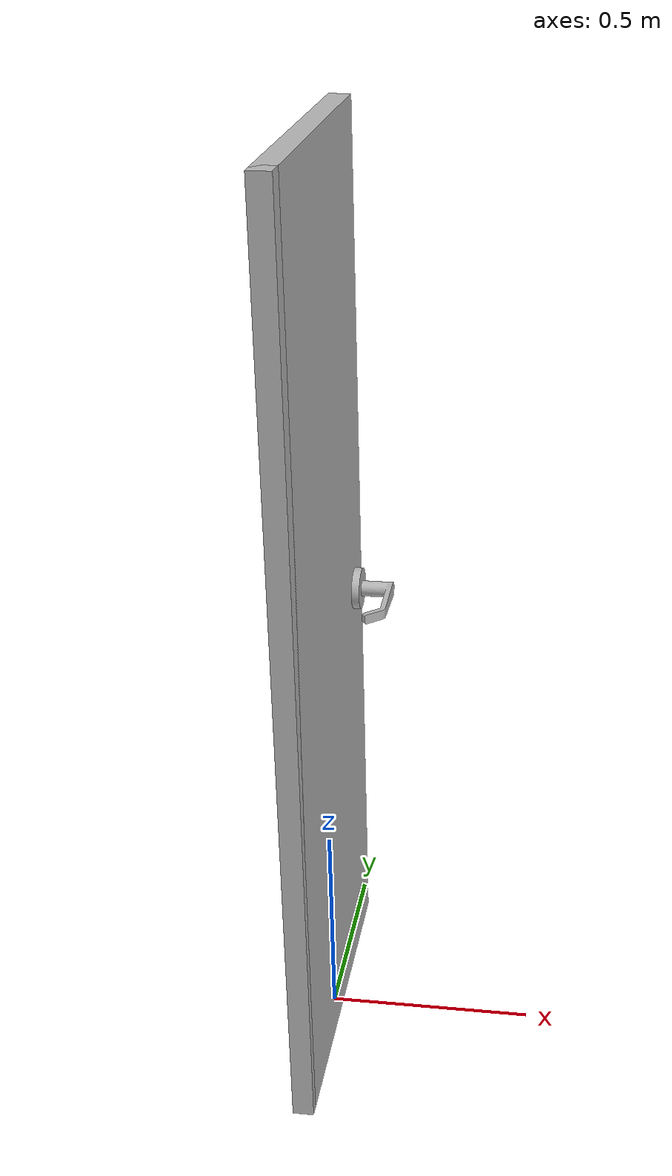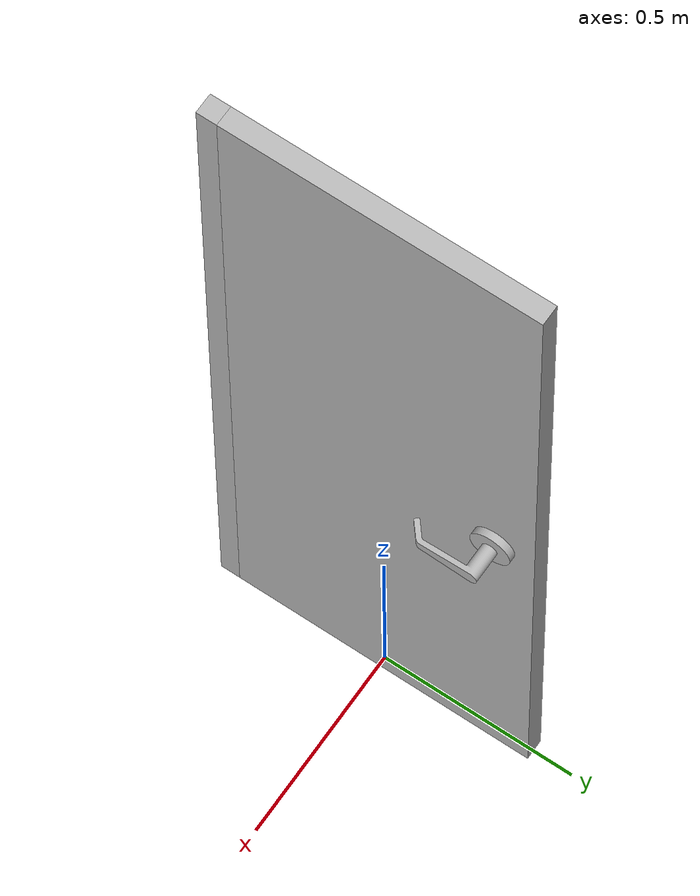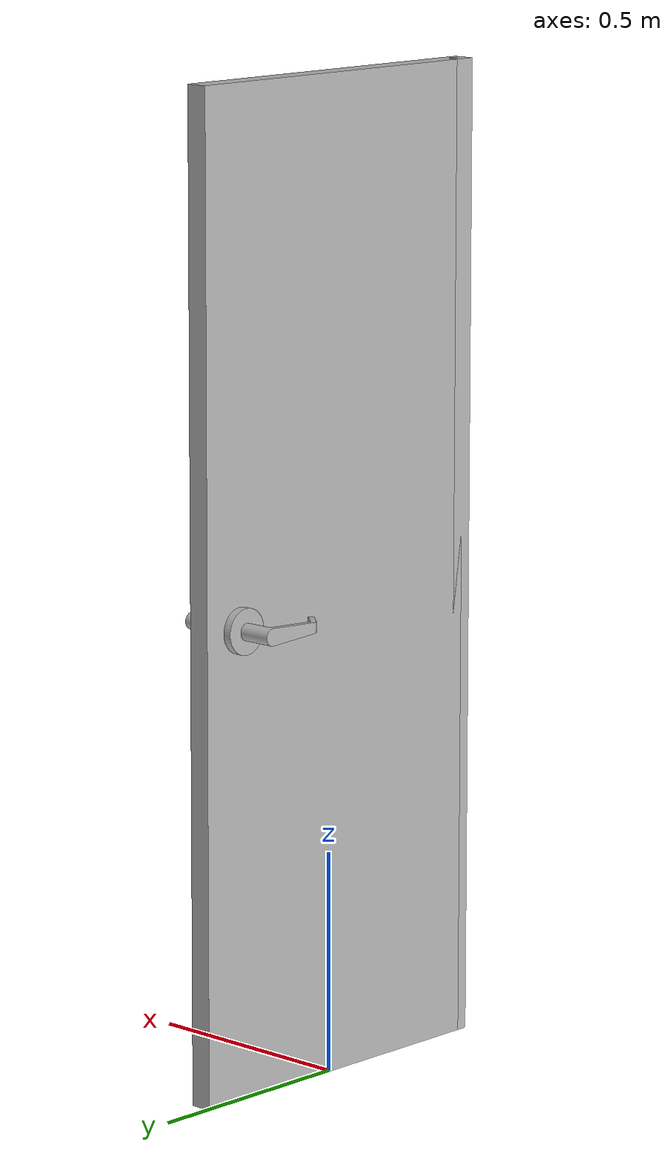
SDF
<?xml version="1.0"?>
<sdf version="1.6">
    <model name="impuls/door_inside">
      <static>false</static>
      <link name="frame">
        <pose>0.0 -0.4 1.11 0 0 0</pose>

        <collision name="collision_1">
          <geometry>
            <box>
              <size>0.05 0.05 2.20</size>
            </box>
          </geometry>
        </collision>

        <visual name="visual">
          <geometry>
            <box>
              <size>0.05 0.05 2.20</size>
            </box>
          </geometry>
        </visual>
      </link>

      <link name="door">
        <pose>0 0.00 1.11 0 0 0</pose>
        <collision name="collision">
          <geometry>
            <box>
              <size>0.05 0.8 2.20</size>
            </box>
          </geometry>
        </collision>
        <visual name="visual">
          <geometry>
            <box>
              <size>0.05 0.8 2.20</size>
            </box>
          </geometry>
        </visual>
     </link>

      <joint name="hinge" type="revolute">
        <parent>frame</parent>
        <child>door</child>
        <axis>
          <xyz>0 0 1</xyz>
          <limit>
            <lower>0</lower>
            <upper>1.58</upper>
          </limit>
          <dynamics>
            <damping>1.0</damping>
            <friction>1.0</friction>
          </dynamics>
        </axis>
        <physics>
          <ode>
            <cfm_damping>1</cfm_damping>
          </ode>
        </physics>
        <pose>0.0 -0.4 1.115 0 0 0</pose>
      </joint>

      <joint name="world_joint" type="revolute">
        <child>frame</child>
        <parent>world</parent>
        <axis>
          <limit>
            <lower>0</lower>
            <upper>0</upper>
          </limit>
          <xyz>0 1 0</xyz>
          <dynamics>
            <damping>1.0</damping>
          </dynamics>
          <use_parent_model_frame>true</use_parent_model_frame>
        </axis>
        <physics>
          <ode>
            <cfm_damping>1</cfm_damping>
          </ode>
        </physics>
      </joint>

      <link name="handles">
        <pose>0 0.3 1.05 0 3.14 1.57</pose>
        <collision name="handle1_collision">
          <pose>0 0.025 0 -1.57 0 0</pose>
          <geometry>
            <mesh>
              <uri>model://door_handle/meshes/handle.dae</uri>
            </mesh>
          </geometry>
        </collision>
        <visual name="handle1_visual">
          <pose>0 0.025 0 -1.57 0 0</pose>
          <geometry>
            <mesh>
              <uri>model://door_handle/meshes/handle.dae</uri>
            </mesh>
          </geometry>
        </visual>
        <collision name="handle2_collision">
          <pose>0 -0.025 0 1.57 0 0</pose>
          <geometry>
            <mesh>
              <uri>model://door_handle/meshes/handle.dae</uri>
            </mesh>
          </geometry>
        </collision>
        <visual name="handle2_visual">
          <pose>0 -0.025 0 1.57 0 0</pose>
          <geometry>
            <mesh>
              <uri>model://door_handle/meshes/handle.dae</uri>
            </mesh>
          </geometry>
        </visual>
      </link>

      <joint name="handle" type="revolute">
        <parent>door</parent>
        <child>handles</child>
        <pose>0 0 0 0 0 0</pose>
        <axis>
          <xyz>1 0 0</xyz>
          <limit>
            <lower>0</lower>
            <upper>1.58</upper>
          </limit>
          <dynamics>
            <damping>0.1</damping>
            <spring_stiffness>0.3</spring_stiffness>
          </dynamics>
          <use_parent_model_frame>true</use_parent_model_frame>
        </axis>
        <physics>
          <ode>
            <cfm_damping>1</cfm_damping>
          </ode>
        </physics>
      </joint>

      <link name="handle_volume">
            <virtual_volume name="handle_vv">
                <geometry>
                    <box>
                        <size>0.2 0.12 0.12</size>
                    </box>
                </geometry>
                <pose>0.125 0.365 1.06 0 0 0</pose>
            </virtual_volume>
        </link>
        <link name="handle_behind_volume">
            <virtual_volume name="handle_behind_vv">
                <geometry>
                    <box>
                        <size>0.2 0.12 0.12</size>
                    </box>
                </geometry>
                <pose>-0.125 0.365 1.06 0 0 0</pose>
            </virtual_volume>
        </link>
        <!--let's add a frame left point and frame right point for the rgbd sensor-->
        <link name="frame_left_point">
             <virtual_volume name="frame_left_point_vv">
                <geometry>
                    <box>
                        <size>0.02 0.02 0.02</size>
                    </box>
                </geometry>
                <pose>0 0.465 0 0 0 0</pose>
            </virtual_volume>
        </link>
        <link name="frame_right_point">
            <virtual_volume name="frame_right_point_vv">
                <geometry>
                    <box>
                        <size>0.02 0.02 0.02</size>
                    </box>
                </geometry>
                <pose>0 -0.465 0 0 0 0</pose>
            </virtual_volume>
        </link>

    </model>
</sdf>
